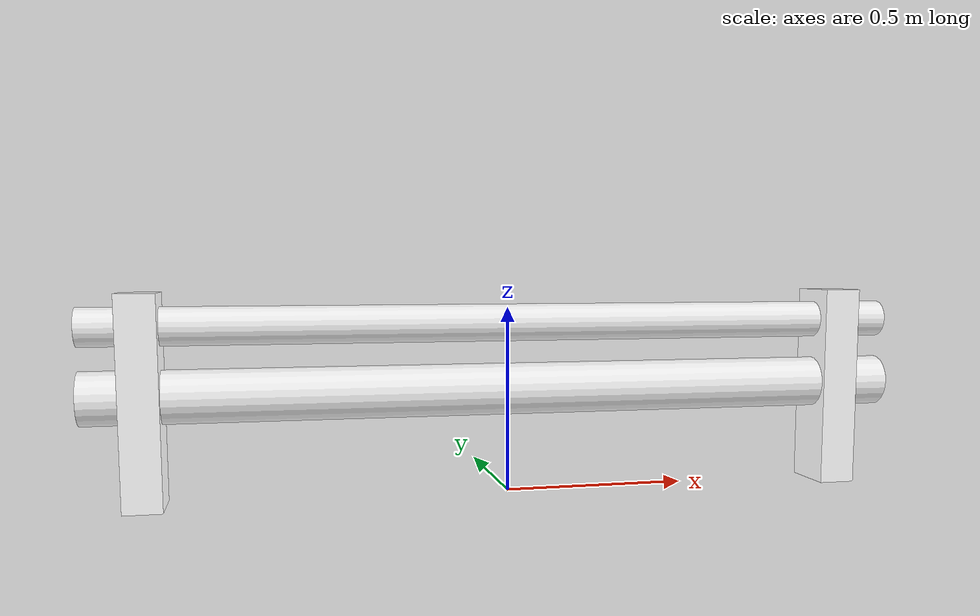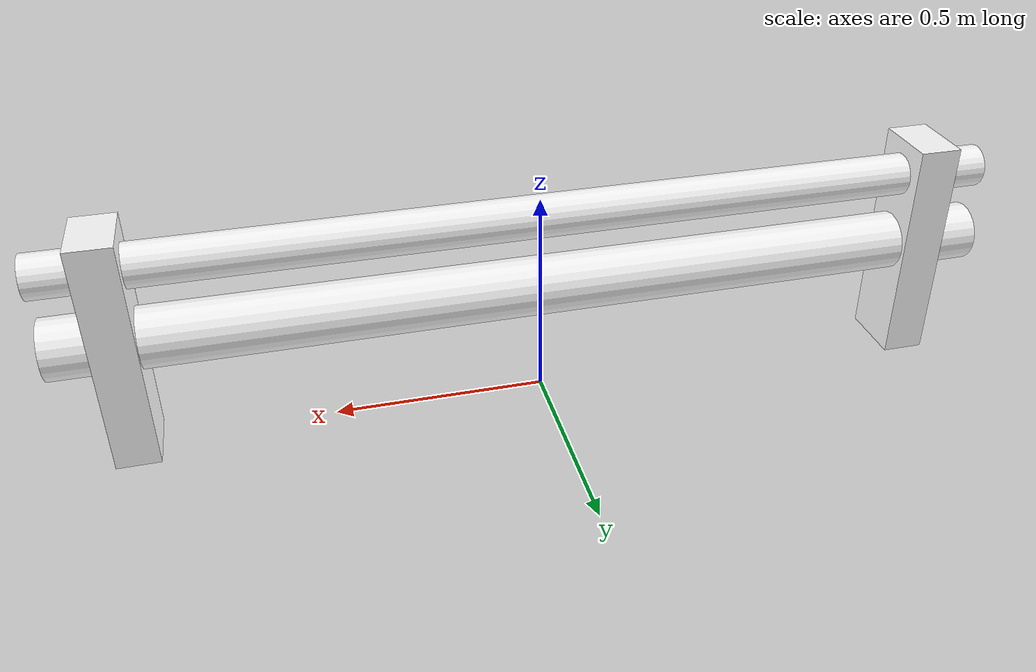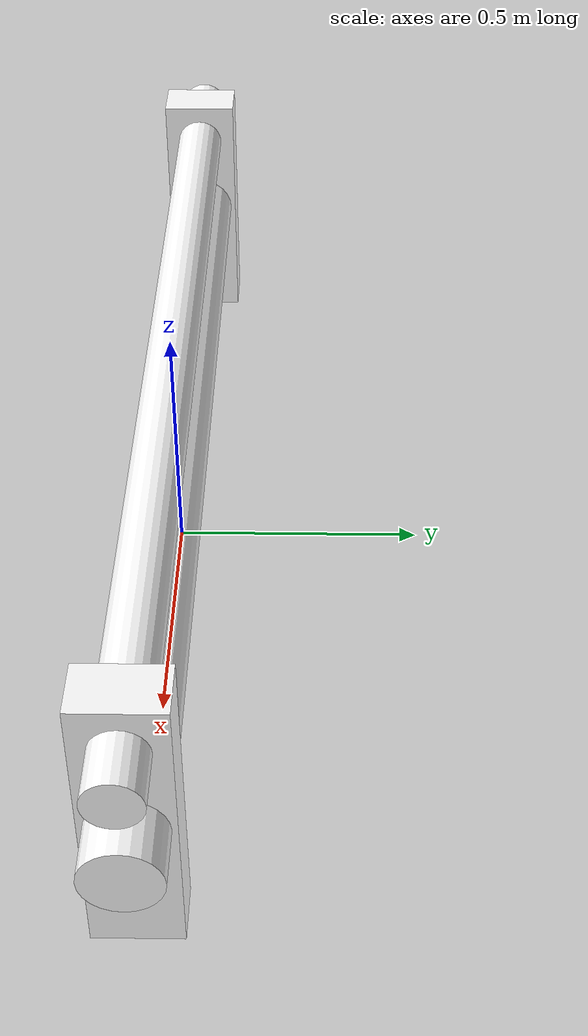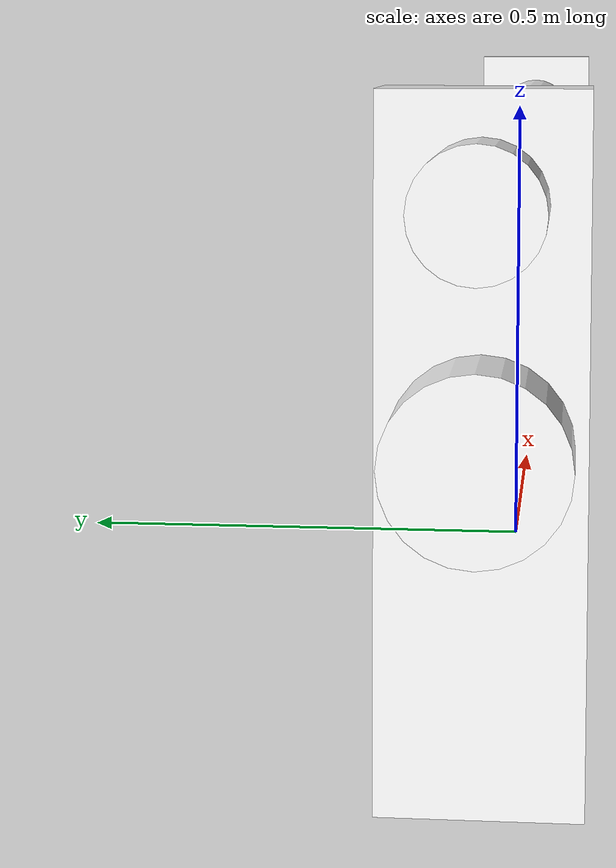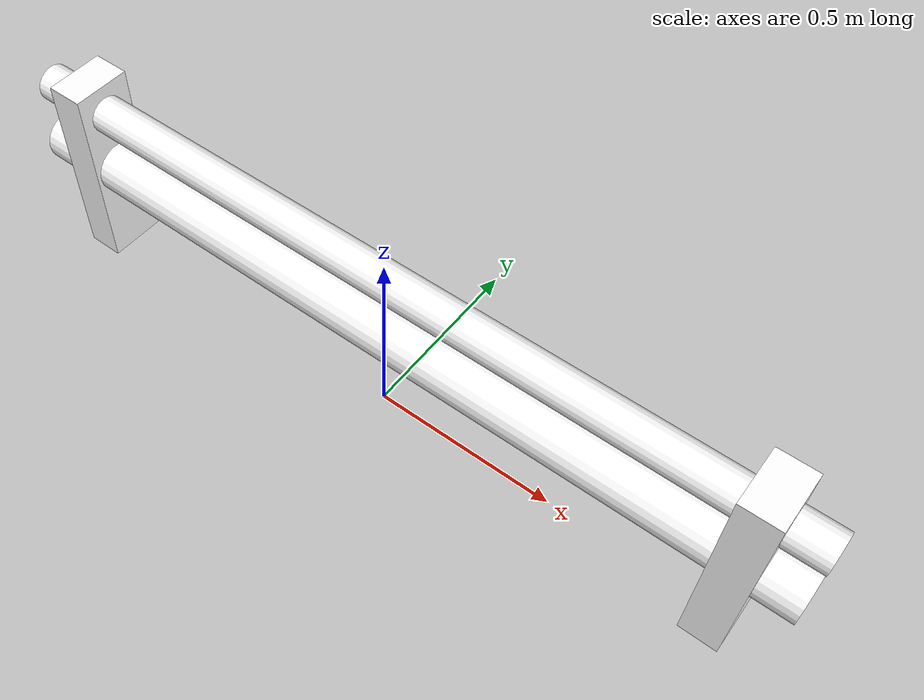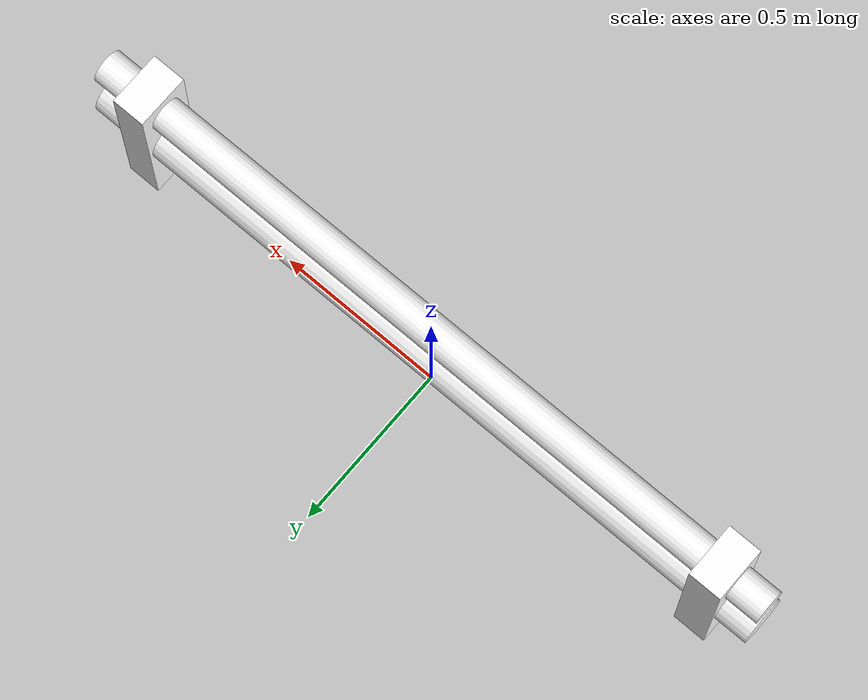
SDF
<?xml version="1.0"?>
<sdf version="1.10">
  <model name="pipe_run">
    <static>true</static>
      <link name="body">
        <collision name="pipeA_col"><pose>0 0 0.28 0 1.5708 0</pose>
          <geometry><cylinder><radius>0.07</radius><length>2.2</length></cylinder>
          </geometry></collision>
        <visual name="pipeA_vis"><pose>0 0 0.28 0 1.5708 0</pose>
          <geometry><cylinder><radius>0.07</radius><length>2.2</length></cylinder></geometry>
          <material>
          <diffuse>1 1 1 1</diffuse>
          <specular>0.15 0.15 0.15 1</specular>
          <pbr><metal>
            <albedo_map>model://slam_assets/materials/textures/pipe_metal.png</albedo_map>
            <roughness>0.85</roughness><metalness>0.0</metalness>
          </metal></pbr>
        </material>
        </visual>
        <collision name="pipeB_col"><pose>0 0 0.46 0 1.5708 0</pose>
          <geometry><cylinder><radius>0.05</radius><length>2.2</length></cylinder>
          </geometry></collision>
        <visual name="pipeB_vis"><pose>0 0 0.46 0 1.5708 0</pose>
          <geometry><cylinder><radius>0.05</radius><length>2.2</length></cylinder></geometry>
          <material>
          <diffuse>1 1 1 1</diffuse>
          <specular>0.15 0.15 0.15 1</specular>
          <pbr><metal>
            <albedo_map>model://slam_assets/materials/textures/pipe_metal.png</albedo_map>
            <roughness>0.85</roughness><metalness>0.0</metalness>
          </metal></pbr>
        </material>
        </visual>
        <collision name="bracketA_col"><pose>-0.95 0 0.27 0 0 0</pose>
          <geometry><box><size>0.10 0.16 0.55</size></box></geometry></collision>
        <visual name="bracketA_vis"><pose>-0.95 0 0.27 0 0 0</pose>
          <geometry><box><size>0.10 0.16 0.55</size></box></geometry>
          <material>
          <diffuse>1 1 1 1</diffuse>
          <specular>0.15 0.15 0.15 1</specular>
          <pbr><metal>
            <albedo_map>model://slam_assets/materials/textures/metal_panel.png</albedo_map>
            <roughness>0.85</roughness><metalness>0.0</metalness>
          </metal></pbr>
        </material>
        </visual>
        <collision name="bracketB_col"><pose>0.95 0 0.27 0 0 0</pose>
          <geometry><box><size>0.10 0.16 0.55</size></box></geometry></collision>
        <visual name="bracketB_vis"><pose>0.95 0 0.27 0 0 0</pose>
          <geometry><box><size>0.10 0.16 0.55</size></box></geometry>
          <material>
          <diffuse>1 1 1 1</diffuse>
          <specular>0.15 0.15 0.15 1</specular>
          <pbr><metal>
            <albedo_map>model://slam_assets/materials/textures/metal_panel.png</albedo_map>
            <roughness>0.85</roughness><metalness>0.0</metalness>
          </metal></pbr>
        </material>
        </visual>
      </link>
  </model>
</sdf>
